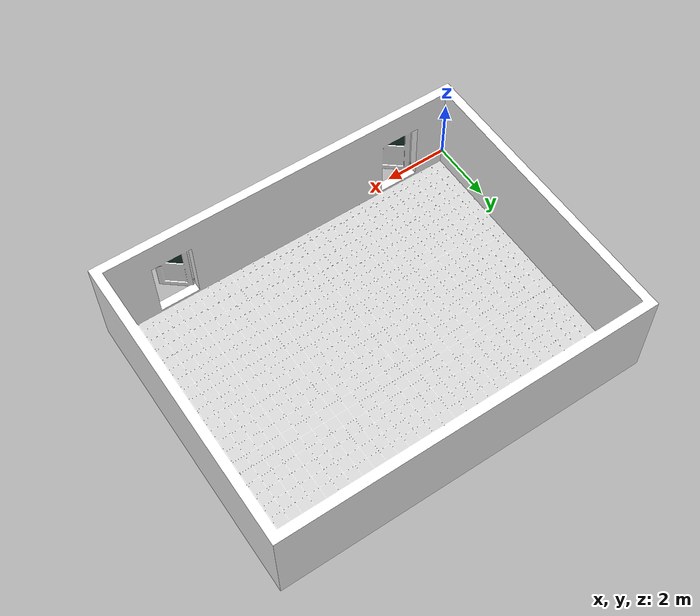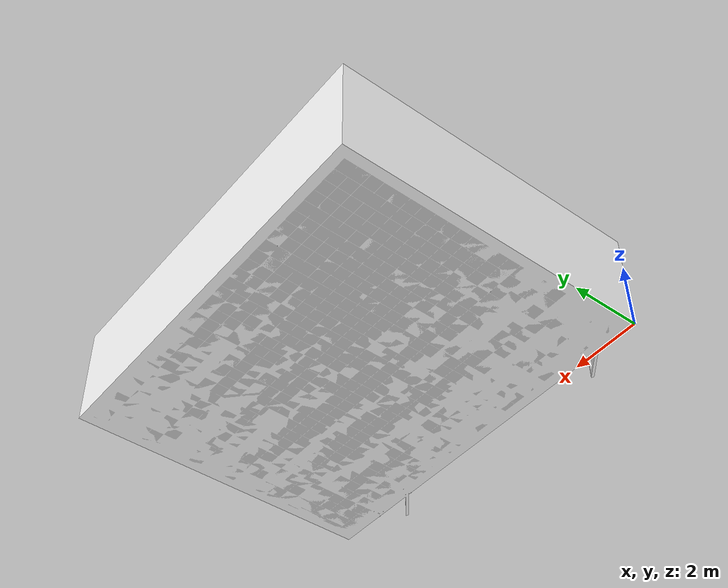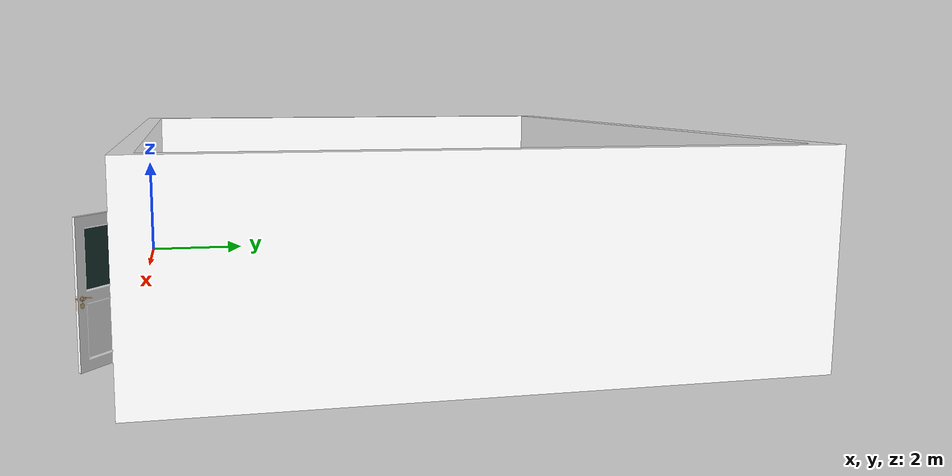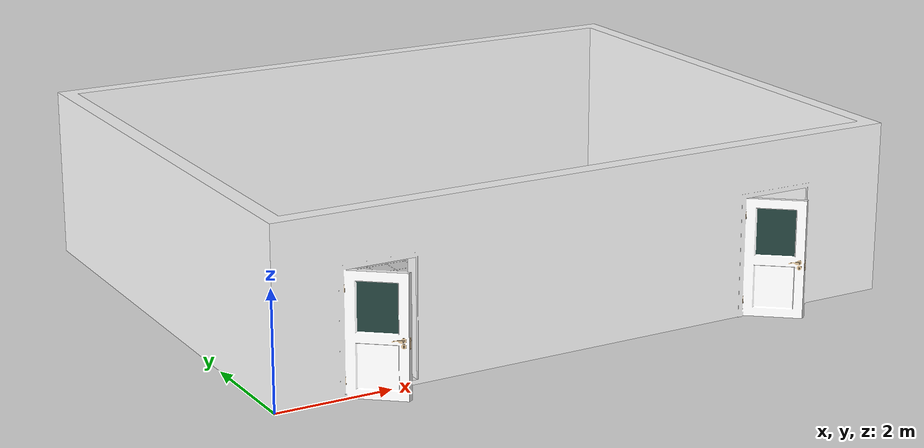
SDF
<?xml version='1.0'?>
<sdf version='1.6'>
  <model name='Lab_Wall'>
    <static>true</static>
    <link name="link">
      <pose>0 0 0 0 0 0</pose>
      <visual name="visual">
            <geometry>
                <mesh>
                  <scale>1.2 1.2 1.2</scale>
                  <uri>model://Lab_Wall/meshes/lab_wall.dae</uri>
                </mesh>
            </geometry>
        </visual>
        <collision name="collision">
            <geometry>
                <mesh>
                  <scale>1.2 1.2 1.2</scale>
                  <uri>model://Lab_Wall/meshes/lab_wall.dae</uri>
                </mesh>
            </geometry>
        </collision>
    </link>
  </model>
</sdf>
